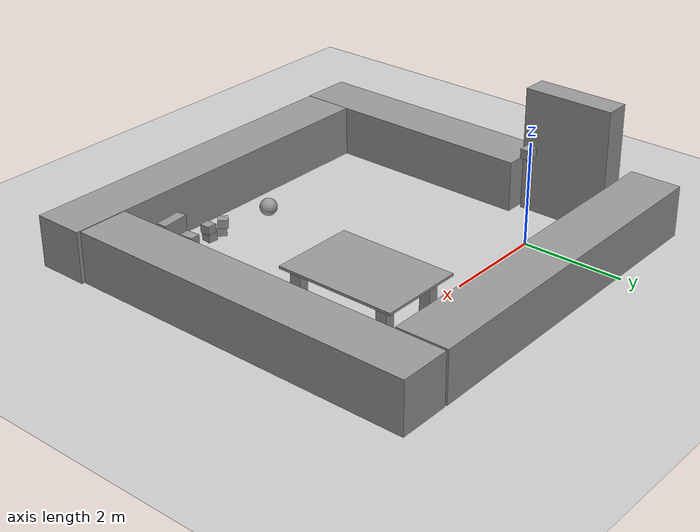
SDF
<sdf version="1.6">
 <world name="default">
  <light name="sun" type="directional">
   <pose>0 0 10 0 -0 0</pose>
   <diffuse>0.8 0.8 0.8 1</diffuse>
   <specular>0.1 0.1 0.1 1</specular>
   <attenuation>
    <range>1000</range>
    <constant>0.9</constant>
    <linear>0.01</linear>
    <quadratic>0.001</quadratic>
   </attenuation>
   <direction>-0.5 0.5 -1</direction>
  </light>
  <model name="ground_plane">
   <static>1</static>
   <link name="link">
    <collision name="collision">
     <geometry><plane><normal>0 0 1</normal><size>100 100</size></plane></geometry>
     <surface><friction><ode><mu>100</mu><mu2>50</mu2></ode></friction></surface>
    </collision>
    <visual name="visual">
     <cast_shadows>0</cast_shadows>
     <geometry><plane><normal>0 0 1</normal><size>100 100</size></plane></geometry>
     <material>
      <script><uri>file://media/materials/scripts/gazebo.material</uri><name>Gazebo/Grey</name></script>
     </material>
    </visual>
   </link>
  </model>
  <gravity>0 0 -9.8</gravity>
  <magnetic_field>6e-06 2.3e-05 -4.2e-05</magnetic_field>
  <atmosphere type="adiabatic"/>
  <physics name="default_physics" default="0" type="ode">
   <max_step_size>0.001</max_step_size>
   <real_time_factor>1</real_time_factor>
   <real_time_update_rate>1000</real_time_update_rate>
  </physics>
  <scene><ambient>0.4 0.4 0.4 1</ambient><background>0.7 0.7 0.7 1</background><shadows>1</shadows></scene>
  <spherical_coordinates>
   <surface_model>EARTH_WGS84</surface_model>
   <latitude_deg>0</latitude_deg>
   <longitude_deg>0</longitude_deg>
   <elevation>0</elevation>
   <heading_deg>0</heading_deg>
  </spherical_coordinates>
  <model name="unit_box_0_clone_0">
   <pose>2.58419 -5.54168 0.5 0 0 -0.002537</pose>
   <link name="link">
    <inertial>
     <mass>1</mass>
     <inertia><ixx>0</ixx><ixy>0</ixy><ixz>0</ixz><iyy>0</iyy><iyz>0</iyz><izz>0</izz></inertia>
    </inertial>
    <collision name="collision"><geometry><box><size>6.99949 1 1</size></box></geometry></collision>
    <visual name="visual">
     <geometry><box><size>6.99949 1 1</size></box></geometry>
     <material>
      <script><name>Gazebo/Grey</name><uri>file://media/materials/scripts/gazebo.material</uri></script>
     </material>
    </visual>
   </link>
  </model>
  <model name="unit_box_0_clone_clone">
   <pose>5.51985 -1.52946 0.499757 -0 -6.9e-05 -1.56883</pose>
   <link name="link">
    <inertial>
     <mass>1</mass>
     <inertia><ixx>0</ixx><ixy>0</ixy><ixz>0</ixz><iyy>0</iyy><iyz>0</iyz><izz>0</izz></inertia>
    </inertial>
    <collision name="collision"><geometry><box><size>6.99949 1 1</size></box></geometry></collision>
    <visual name="visual">
     <geometry><box><size>6.99949 1 1</size></box></geometry>
     <material>
      <script><name>Gazebo/Grey</name><uri>file://media/materials/scripts/gazebo.material</uri></script>
     </material>
    </visual>
   </link>
  </model>
  <model name="unit_box_1_clone">
   <pose>3.52248 -4.52121 0.071088 8.5e-05 0.000138 -0.091237</pose>
   <link name="unit_box_1_clone::unit_box_1_clone::link">
    <inertial>
     <mass>1</mass>
     <inertia><ixx>0</ixx><ixy>0</ixy><ixz>0</ixz><iyy>0</iyy><iyz>0</iyz><izz>0</izz></inertia>
    </inertial>
    <collision name="collision"><geometry><box><size>0.191631 0.199809 0.1656</size></box></geometry></collision>
    <visual name="visual">
     <geometry><box><size>0.191631 0.199809 0.1656</size></box></geometry>
     <material>
      <script><name>Gazebo/Grey</name><uri>file://media/materials/scripts/gazebo.material</uri></script>
     </material>
    </visual>
   </link>
  </model>
  <model name="unit_sphere_0">
   <pose>2.1278 -4.36385 0.170052 -0.01416 0.000776 0.003057</pose>
   <link name="link">
    <inertial>
     <mass>1</mass>
     <inertia><ixx>0</ixx><ixy>0</ixy><ixz>0</ixz><iyy>0</iyy><iyz>0</iyz><izz>0</izz></inertia>
    </inertial>
    <collision name="collision"><geometry><sphere><radius>0.170052</radius></sphere></geometry></collision>
    <visual name="visual">
     <geometry><sphere><radius>0.170052</radius></sphere></geometry>
     <material>
      <script><name>Gazebo/Grey</name><uri>file://media/materials/scripts/gazebo.material</uri></script>
     </material>
    </visual>
   </link>
  </model>
  <model name="unit_box_1_clone_clone_clone">
   <pose>3.24534 -4.50602 0.0828 -0 -1e-06 0.88876</pose>
   <link name="unit_box_1_clone_clone_clone::unit_box_1_clone_clone_clone::unit_box_1_clone_clone::unit_box_1_clone_clone::link">
    <inertial>
     <mass>1</mass>
     <inertia><ixx>0</ixx><ixy>0</ixy><ixz>0</ixz><iyy>0</iyy><iyz>0</iyz><izz>0</izz></inertia>
    </inertial>
    <collision name="collision"><geometry><box><size>0.191631 0.199809 0.1656</size></box></geometry></collision>
    <visual name="visual">
     <geometry><box><size>0.191631 0.199809 0.1656</size></box></geometry>
     <material>
      <script><name>Gazebo/Grey</name><uri>file://media/materials/scripts/gazebo.material</uri></script>
     </material>
    </visual>
   </link>
  </model>
  <model name="unit_box_1_clone_clone_clone_0">
   <pose>4.36149 -4.57855 0.363134 0 1e-06 0.090496</pose>
   <link name="unit_box_1_clone_clone::unit_box_1_clone_clone::link">
    <inertial>
     <mass>1</mass>
     <inertia><ixx>0</ixx><ixy>0</ixy><ixz>0</ixz><iyy>0</iyy><iyz>0</iyz><izz>0</izz></inertia>
    </inertial>
    <collision name="collision">
     <geometry><box><size>0.538131 0.199809 0.726287</size></box></geometry>
    </collision>
    <visual name="visual">
     <geometry><box><size>0.538131 0.199809 0.726287</size></box></geometry>
     <material>
      <script><name>Gazebo/Grey</name><uri>file://media/materials/scripts/gazebo.material</uri></script>
     </material>
    </visual>
   </link>
  </model>
  <model name="unit_box_1_clone_clone_clone_1">
   <pose>4.6689 -3.79634 0.406681 9e-06 0 0.091058</pose>
   <link name="unit_box_1_clone_clone::unit_box_1_clone_clone::link">
    <inertial>
     <mass>1</mass>
     <inertia><ixx>0</ixx><ixy>0</ixy><ixz>0</ixz><iyy>0</iyy><iyz>0</iyz><izz>0</izz></inertia>
    </inertial>
    <collision name="collision">
     <geometry><box><size>0.191631 0.262789 0.813359</size></box></geometry>
    </collision>
    <visual name="visual">
     <geometry><box><size>0.191631 0.262789 0.813359</size></box></geometry>
     <material>
      <script><name>Gazebo/Grey</name><uri>file://media/materials/scripts/gazebo.material</uri></script>
     </material>
    </visual>
   </link>
  </model>
  <model name="unit_box_2">
   <pose>-1.40944 -3.51645 0.499948 -2e-05 -0 -0.004096</pose>
   <link name="link">
    <inertial>
     <mass>1</mass>
     <inertia><ixx>0</ixx><ixy>0</ixy><ixz>0</ixz><iyy>0</iyy><iyz>0</iyz><izz>0</izz></inertia>
    </inertial>
    <collision name="collision"><geometry><box><size>1 5.05969 1</size></box></geometry></collision>
    <visual name="visual">
     <geometry><box><size>1 5.05969 1</size></box></geometry>
     <material>
      <script><name>Gazebo/Grey</name><uri>file://media/materials/scripts/gazebo.material</uri></script>
     </material>
    </visual>
   </link>
  </model>
  <model name="unit_box_0_clone_0_clone">
   <pose>1.47463 1.44601 0.499757 0 -6.9e-05 0.008608</pose>
   <link name="link">
    <inertial>
     <mass>1</mass>
     <inertia><ixx>0</ixx><ixy>0</ixy><ixz>0</ixz><iyy>0</iyy><iyz>0</iyz><izz>0</izz></inertia>
    </inertial>
    <collision name="collision"><geometry><box><size>6.99949 1 1</size></box></geometry></collision>
    <visual name="visual">
     <geometry><box><size>6.99949 1 1</size></box></geometry>
     <material>
      <script><name>Gazebo/Grey</name><uri>file://media/materials/scripts/gazebo.material</uri></script>
     </material>
    </visual>
   </link>
  </model>
  <model name="unit_box_0">
   <pose>-1.42427 -0.028473 1.21559 3e-06 1e-06 -9e-06</pose>
   <link name="unit_box_0::link">
    <inertial>
     <mass>1</mass>
     <inertia><ixx>0</ixx><ixy>0</ixy><ixz>0</ixz><iyy>0</iyy><iyz>0</iyz><izz>0</izz></inertia>
    </inertial>
    <collision name="collision"><geometry><box><size>0.487774 1.77265 2.43119</size></box></geometry></collision>
    <visual name="visual">
     <geometry><box><size>0.487774 1.77265 2.43119</size></box></geometry>
     <material>
      <script><name>Gazebo/Grey</name><uri>file://media/materials/scripts/gazebo.material</uri></script>
     </material>
    </visual>
   </link>
  </model>
  <model name="unit_box_1">
   <pose>-1.05257 -0.721728 1.23516 0 -0 0</pose>
   <link name="unit_box_1::link">
    <inertial>
     <mass>1</mass>
     <inertia><ixx>0</ixx><ixy>0</ixy><ixz>0</ixz><iyy>0</iyy><iyz>0</iyz><izz>0</izz></inertia>
    </inertial>
    <collision name="collision">
     <geometry><box><size>0.238713 0.191816 0.190692</size></box></geometry>
    </collision>
    <visual name="visual">
     <geometry><box><size>0.238713 0.191816 0.190692</size></box></geometry>
     <material>
      <script><name>Gazebo/Grey</name><uri>file://media/materials/scripts/gazebo.material</uri></script>
     </material>
    </visual>
    <gravity>0</gravity>
   </link>
  </model>
  <model name="unit_box_3">
   <pose>4.34566 0.257589 0.400144 -1e-06 -2e-06 0.003347</pose>
   <link name="link">
    <inertial>
     <mass>1</mass>
     <inertia><ixx>0</ixx><ixy>0</ixy><ixz>0</ixz><iyy>0</iyy><iyz>0</iyz><izz>0</izz></inertia>
    </inertial>
    <collision name="collision"><geometry><box><size>0.19265 0.218178 0.800307</size></box></geometry></collision>
    <visual name="visual">
     <geometry><box><size>0.19265 0.218178 0.800307</size></box></geometry>
     <material>
      <script><name>Gazebo/Grey</name><uri>file://media/materials/scripts/gazebo.material</uri></script>
     </material>
    </visual>
   </link>
  </model>
  <model name="unit_box_3_clone">
   <pose>4.32579 -1.58308 0.400154 0 -0 0.000563</pose>
   <link name="link">
    <inertial>
     <mass>1</mass>
     <inertia><ixx>0</ixx><ixy>0</ixy><ixz>0</ixz><iyy>0</iyy><iyz>0</iyz><izz>0</izz></inertia>
    </inertial>
    <collision name="collision"><geometry><box><size>0.19265 0.218179 0.800307</size></box></geometry></collision>
    <visual name="visual">
     <geometry><box><size>0.19265 0.218179 0.800307</size></box></geometry>
     <material>
      <script><name>Gazebo/Grey</name><uri>file://media/materials/scripts/gazebo.material</uri></script>
     </material>
    </visual>
   </link>
  </model>
  <model name="unit_box_3_clone_0">
   <pose>3.18755 -1.5592 0.400112 0 1e-06 0.000932</pose>
   <link name="link">
    <inertial>
     <mass>1</mass>
     <inertia><ixx>0</ixx><ixy>0</ixy><ixz>0</ixz><iyy>0</iyy><iyz>0</iyz><izz>0</izz></inertia>
    </inertial>
    <collision name="collision"><geometry><box><size>0.19265 0.218179 0.800307</size></box></geometry></collision>
    <visual name="visual">
     <geometry><box><size>0.19265 0.218179 0.800307</size></box></geometry>
     <material>
      <script><name>Gazebo/Grey</name><uri>file://media/materials/scripts/gazebo.material</uri></script>
     </material>
    </visual>
   </link>
  </model>
  <model name="unit_box_3_clone_1">
   <pose>3.2003 0.240958 0.400154 -0 1e-06 -0.00036</pose>
   <link name="link">
    <inertial>
     <mass>1</mass>
     <inertia><ixx>0</ixx><ixy>0</ixy><ixz>0</ixz><iyy>0</iyy><iyz>0</iyz><izz>0</izz></inertia>
    </inertial>
    <collision name="collision"><geometry><box><size>0.19265 0.218179 0.800307</size></box></geometry></collision>
    <visual name="visual">
     <geometry><box><size>0.19265 0.218179 0.800307</size></box></geometry>
     <material>
      <script><name>Gazebo/Grey</name><uri>file://media/materials/scripts/gazebo.material</uri></script>
     </material>
    </visual>
   </link>
  </model>
  <model name="unit_box_4">
   <pose>3.72053 -0.654921 0.824663 1.3e-05 -2.3e-05 -7e-05</pose>
   <link name="link">
    <inertial>
     <mass>1</mass>
     <inertia><ixx>0</ixx><ixy>0</ixy><ixz>0</ixz><iyy>0</iyy><iyz>0</iyz><izz>0</izz></inertia>
    </inertial>
    <collision name="collision"><geometry><box><size>1.63338 2.34753 0.048709</size></box></geometry></collision>
    <visual name="visual">
     <geometry><box><size>1.63338 2.34753 0.048709</size></box></geometry>
     <material>
      <script><name>Gazebo/Grey</name><uri>file://media/materials/scripts/gazebo.material</uri></script>
     </material>
    </visual>
   </link>
  </model>
  <model name="unit_box_1_clone_clone_clone_clone">
   <pose>3.22465 -4.47199 0.248401 -9e-06 -3e-06 0.792095</pose>
   <link name="unit_box_1_clone_clone_clone_clone::unit_box_1_clone_clone_clone::unit_box_1_clone_clone::unit_box_1_clone_clone::link">
    <inertial>
     <mass>1</mass>
     <inertia><ixx>0</ixx><ixy>0</ixy><ixz>0</ixz><iyy>0</iyy><iyz>0</iyz><izz>0</izz></inertia>
    </inertial>
    <collision name="collision"><geometry><box><size>0.191631 0.199809 0.1656</size></box></geometry></collision>
    <visual name="visual">
     <geometry><box><size>0.191631 0.199809 0.1656</size></box></geometry>
     <material>
      <script><name>Gazebo/Grey</name><uri>file://media/materials/scripts/gazebo.material</uri></script>
     </material>
    </visual>
   </link>
  </model>
  <model name="unit_box_1_clone_clone_0">
   <pose>3.54592 -4.52549 0.236655 9.7e-05 0.000132 -0.013274</pose>
   <link name="unit_box_1_clone_clone_0::unit_box_1_clone::link">
    <inertial>
     <mass>1</mass>
     <inertia><ixx>0</ixx><ixy>0</ixy><ixz>0</ixz><iyy>0</iyy><iyz>0</iyz><izz>0</izz></inertia>
    </inertial>
    <collision name="collision"><geometry><box><size>0.191631 0.199809 0.1656</size></box></geometry></collision>
    <visual name="visual">
     <geometry><box><size>0.191631 0.199809 0.1656</size></box></geometry>
     <material>
      <script><name>Gazebo/Grey</name><uri>file://media/materials/scripts/gazebo.material</uri></script>
     </material>
    </visual>
   </link>
  </model>
 </world>
</sdf>
